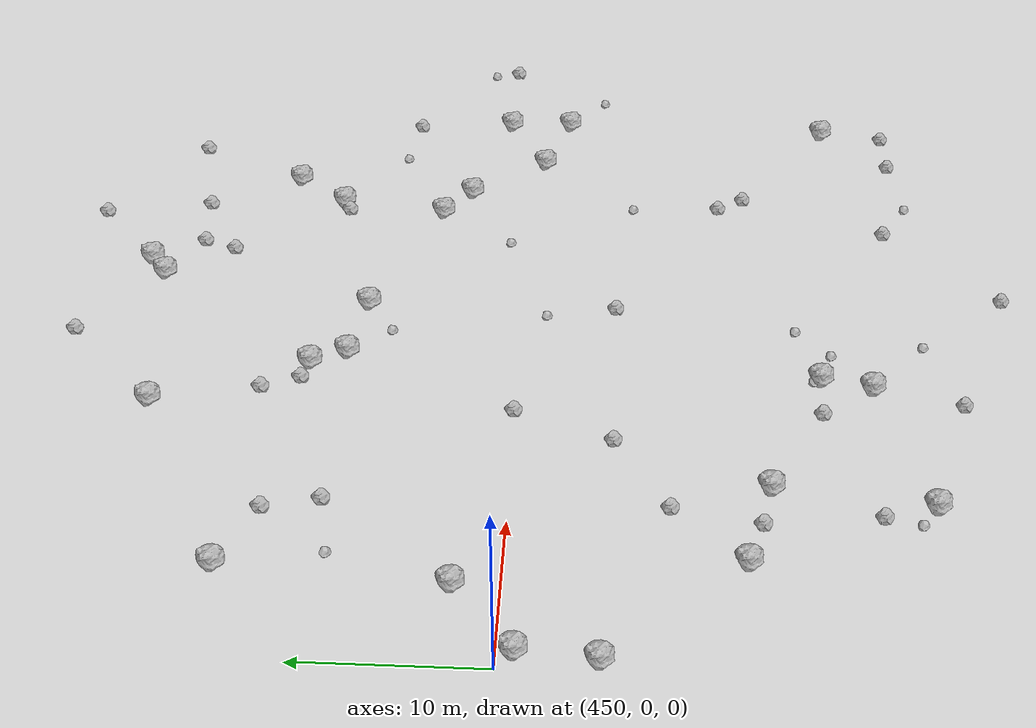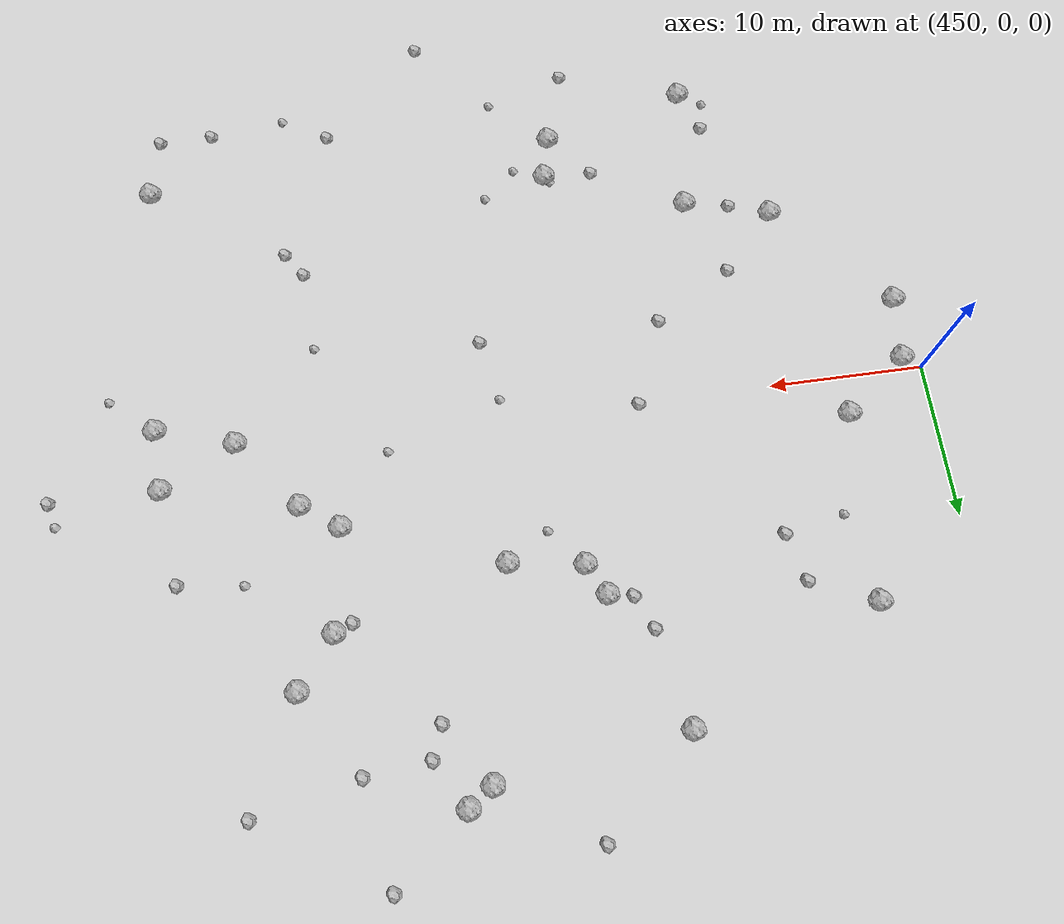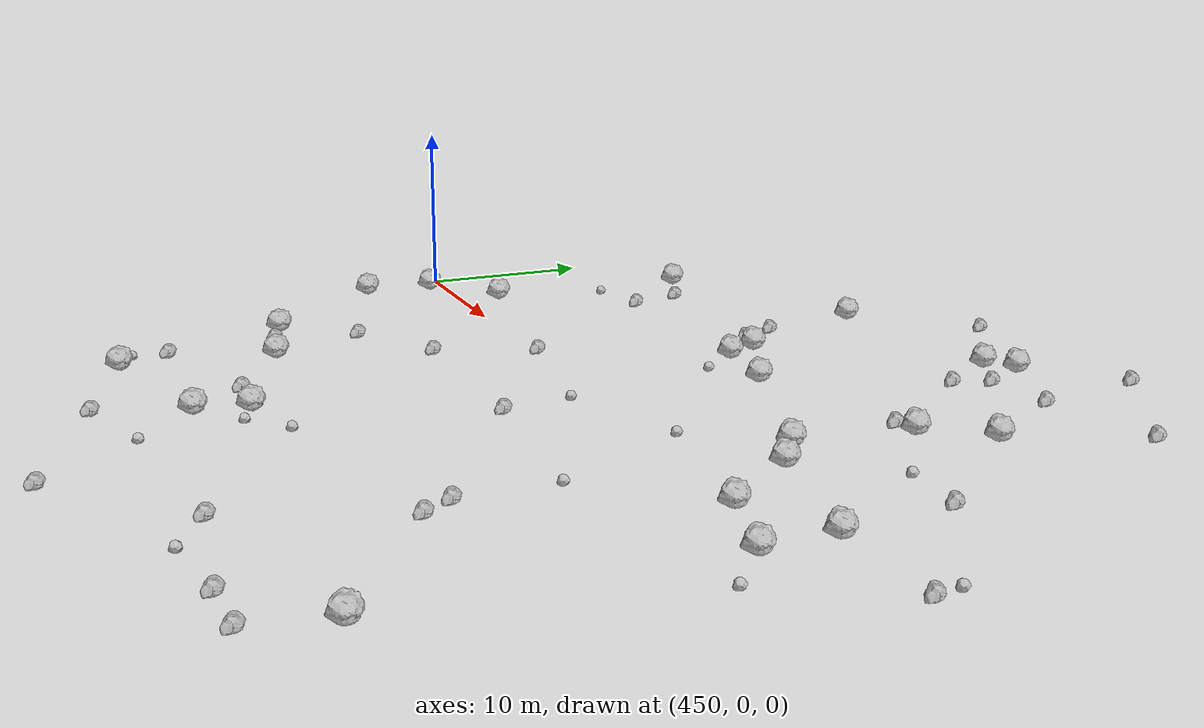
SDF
<sdf version="1.6">
 <world name="default">
  <include><uri>model://sun</uri></include>
  <model name="rock1_12_4">
   <include><uri>model://rock1</uri><pose>482.64199574610177 23.435759086770922 0.5 0 0 0</pose></include>
  </model>
  <model name="rock1_12_5">
   <include><uri>model://rock1</uri><pose>488.4701925574311 5.7614958583891465 0.5 0 0 0</pose></include>
  </model>
  <model name="rock1_12_6">
   <include><uri>model://rock1</uri><pose>462.1260179188476 -22.4293802512785 0.5 0 0 0</pose></include>
  </model>
  <model name="rock1_12_7">
   <include><uri>model://rock1</uri><pose>478.47591059240995 9.394448965750207 0.5 0 0 0</pose></include>
  </model>
  <model name="rock1_12_8">
   <include><uri>model://rock1</uri><pose>455.48153772056094 2.544422462161549 0.5 0 0 0</pose></include>
  </model>
  <model name="rock1_12_9">
   <include><uri>model://rock1</uri><pose>456.38541646920856 14.69393347108899 0.5 0 0 0</pose></include>
  </model>
  <model name="rock1_12_10">
   <include><uri>model://rock1</uri><pose>471.7010389612798 -20.05128866161443 0.5 0 0 0</pose></include>
  </model>
  <model name="rock1_12_11">
   <include><uri>model://rock1</uri><pose>472.3738663183941 -17.179145416937317 0.5 0 0 0</pose></include>
  </model>
  <model name="rock1_12_12">
   <include><uri>model://rock1</uri><pose>499.4579111122678 1.9325383662793847 0.5 0 0 0</pose></include>
  </model>
  <model name="rock1_12_13">
   <include><uri>model://rock1</uri><pose>473.75163541225953 10.09084537883345 0.5 0 0 0</pose></include>
  </model>
  <model name="rock1_12_14">
   <include><uri>model://rock1</uri><pose>494.5977036810269 -0.5701405995881039 0.5 0 0 0</pose></include>
  </model>
  <model name="rock1_12_15">
   <include><uri>model://rock1</uri><pose>468.99967442177325 20.72107084876597 0.5 0 0 0</pose></include>
  </model>
  <model name="rock1_12_16">
   <include><uri>model://rock1</uri><pose>481.07779842828313 22.3163107160973 0.5 0 0 0</pose></include>
  </model>
  <model name="rock1_12_17">
   <include><uri>model://rock1</uri><pose>489.423807688714 12.304365850335472 0.5 0 0 0</pose></include>
  </model>
  <model name="rock1_12_18">
   <include><uri>model://rock1</uri><pose>457.6367869307346 -12.369726235460167 0.5 0 0 0</pose></include>
  </model>
  <model name="rock1_12_19">
   <include><uri>model://rock1</uri><pose>451.23708397839073 -0.8097495054262929 0.5 0 0 0</pose></include>
  </model>
  <model name="rock1_12_20">
   <include><uri>model://rock1</uri><pose>463.20249802633765 -13.824516123456142 0.5 0 0 0</pose></include>
  </model>
  <model name="rock1_12_21">
   <include><uri>model://rock1</uri><pose>491.9193449715129 15.507357631857587 0.5 0 0 0</pose></include>
  </model>
  <model name="rock1_12_22">
   <include><uri>model://rock1</uri><pose>490.8804293809198 4.068440117286727 0.5 0 0 0</pose></include>
  </model>
  <model name="rock1_12_23">
   <include><uri>model://rock1</uri><pose>450.82564721903105 -4.958190653356198 0.5 0 0 0</pose></include>
  </model>
  <model name="rock1_12_24">
   <include><uri>model://rock1</uri><pose>499.62378328537847 -2.0926996196970364 0.5 0 0 0</pose></include>
  </model>
  <model name="rock1_12_25">
   <include><uri>model://rock1</uri><pose>499.20945201218797 -19.310475384306876 0.5 0 0 0</pose></include>
  </model>
  <model name="rock1_12_26">
   <include><uri>model://rock1</uri><pose>472.6962295332964 12.116774168729421 0.5 0 0 0</pose></include>
  </model>
  <model name="rock2_12_0">
   <include><uri>model://rock2</uri><pose>475.01095346427405 26.42119414853135 0.3 0 0 0</pose></include>
  </model>
  <model name="rock2_12_1">
   <include><uri>model://rock2</uri><pose>486.90370053067335 -22.248631550306545 0.3 0 0 0</pose></include>
  </model>
  <model name="rock2_12_2">
   <include><uri>model://rock2</uri><pose>478.31592585186576 -5.457513284657889 0.3 0 0 0</pose></include>
  </model>
  <model name="rock2_12_3">
   <include><uri>model://rock2</uri><pose>487.37605839636205 27.45874037941649 0.3 0 0 0</pose></include>
  </model>
  <model name="rock2_12_4">
   <include><uri>model://rock2</uri><pose>488.26890186784374 11.824698155992188 0.3 0 0 0</pose></include>
  </model>
  <model name="rock2_12_5">
   <include><uri>model://rock2</uri><pose>488.5332107817131 20.915642146491564 0.3 0 0 0</pose></include>
  </model>
  <model name="rock2_12_6">
   <include><uri>model://rock2</uri><pose>461.1484280977705 9.828237531073782 0.3 0 0 0</pose></include>
  </model>
  <model name="rock2_12_7">
   <include><uri>model://rock2</uri><pose>498.7281923474139 8.148320404383 0.3 0 0 0</pose></include>
  </model>
  <model name="rock2_12_8">
   <include><uri>model://rock2</uri><pose>484.39250891137294 20.486069236813606 0.3 0 0 0</pose></include>
  </model>
  <model name="rock2_12_9">
   <include><uri>model://rock2</uri><pose>470.16456773068955 14.583743560061357 0.3 0 0 0</pose></include>
  </model>
  <model name="rock2_12_10">
   <include><uri>model://rock2</uri><pose>460.2387441732568 -13.256268966464152 0.3 0 0 0</pose></include>
  </model>
  <model name="rock2_12_11">
   <include><uri>model://rock2</uri><pose>470.1593973743505 -24.988512066059748 0.3 0 0 0</pose></include>
  </model>
  <model name="rock2_12_12">
   <include><uri>model://rock2</uri><pose>480.04965668061914 -28.582572320195986 0.3 0 0 0</pose></include>
  </model>
  <model name="rock2_12_13">
   <include><uri>model://rock2</uri><pose>460.98938948904413 -19.55825013088173 0.3 0 0 0</pose></include>
  </model>
  <model name="rock2_12_14">
   <include><uri>model://rock2</uri><pose>471.0996062128842 12.43509218184753 0.3 0 0 0</pose></include>
  </model>
  <model name="rock2_12_15">
   <include><uri>model://rock2</uri><pose>468.7028648060523 0.14085453752445432 0.3 0 0 0</pose></include>
  </model>
  <model name="rock2_12_16">
   <include><uri>model://rock2</uri><pose>489.3530394556951 -11.906179201622649 0.3 0 0 0</pose></include>
  </model>
  <model name="rock2_12_17">
   <include><uri>model://rock2</uri><pose>460.38923412176763 12.920331168550796 0.3 0 0 0</pose></include>
  </model>
  <model name="rock2_12_18">
   <include><uri>model://rock2</uri><pose>495.24971756741496 22.4160238861611 0.3 0 0 0</pose></include>
  </model>
  <model name="rock2_12_19">
   <include><uri>model://rock2</uri><pose>466.4305005806091 -5.431477891591175 0.3 0 0 0</pose></include>
  </model>
  <model name="rock2_12_20">
   <include><uri>model://rock2</uri><pose>469.1475666690908 -17.04562533198863 0.3 0 0 0</pose></include>
  </model>
  <model name="rock2_12_21">
   <include><uri>model://rock2</uri><pose>494.84665670954496 -23.384528831946177 0.3 0 0 0</pose></include>
  </model>
  <model name="rock2_12_22">
   <include><uri>model://rock2</uri><pose>461.2272187035533 -8.464512666242527 0.3 0 0 0</pose></include>
  </model>
  <model name="rock2_12_23">
   <include><uri>model://rock2</uri><pose>498.3833531649358 -23.320832260146574 0.3 0 0 0</pose></include>
  </model>
  <model name="rock2_12_24">
   <include><uri>model://rock2</uri><pose>506.4518407375561 1.8656026587060062 0.3 0 0 0</pose></include>
  </model>
  <model name="rock2_12_25">
   <include><uri>model://rock2</uri><pose>483.59895503238783 18.474047899760407 0.3 0 0 0</pose></include>
  </model>
  <model name="rock2_12_26">
   <include><uri>model://rock2</uri><pose>490.45369391485576 -13.536048875112044 0.3 0 0 0</pose></include>
  </model>
  <model name="rock3_12_0">
   <include><uri>model://rock3</uri><pose>474.3709835328823 -17.958954530421764 0.2 0 0 0</pose></include>
  </model>
  <model name="rock3_12_1">
   <include><uri>model://rock3</uri><pose>460.51859731045766 -21.532565788467718 0.2 0 0 0</pose></include>
  </model>
  <model name="rock3_12_2">
   <include><uri>model://rock3</uri><pose>502.4579941075832 -4.489284612988694 0.2 0 0 0</pose></include>
  </model>
  <model name="rock3_12_3">
   <include><uri>model://rock3</uri><pose>475.6974874537047 7.664777552546276 0.2 0 0 0</pose></include>
  </model>
  <model name="rock3_12_4">
   <include><uri>model://rock3</uri><pose>489.0766715714505 -6.4988873892345325 0.2 0 0 0</pose></include>
  </model>
  <model name="rock3_12_5">
   <include><uri>model://rock3</uri><pose>475.37824276486737 -23.370343927480725 0.2 0 0 0</pose></include>
  </model>
  <model name="rock3_12_6">
   <include><uri>model://rock3</uri><pose>506.0423340957558 3.4030016541540533 0.2 0 0 0</pose></include>
  </model>
  <model name="rock3_12_7">
   <include><uri>model://rock3</uri><pose>476.56704939238926 -16.04345717083737 0.2 0 0 0</pose></include>
  </model>
  <model name="rock3_12_8">
   <include><uri>model://rock3</uri><pose>457.217895025836 9.03413071238036 0.2 0 0 0</pose></include>
  </model>
  <model name="rock3_12_9">
   <include><uri>model://rock3</uri><pose>471.9875348491776 -16.797005569641392 0.2 0 0 0</pose></include>
  </model>
  <model name="rock3_12_10">
   <include><uri>model://rock3</uri><pose>494.58368779911854 8.632067341425781 0.2 0 0 0</pose></include>
  </model>
  <model name="rock3_12_11">
   <include><uri>model://rock3</uri><pose>484.9996417535481 1.1876773856222833 0.2 0 0 0</pose></include>
  </model>
  <model name="rock3_12_12">
   <include><uri>model://rock3</uri><pose>477.51132194814454 -1.3903313111842017 0.2 0 0 0</pose></include>
  </model>
  <model name="rock3_12_13">
   <include><uri>model://rock3</uri><pose>489.8504882029635 -23.99231988897224 0.2 0 0 0</pose></include>
  </model>
 </world>
</sdf>
